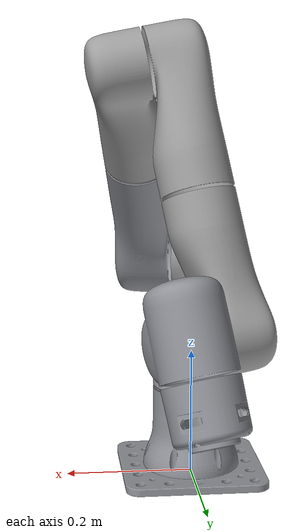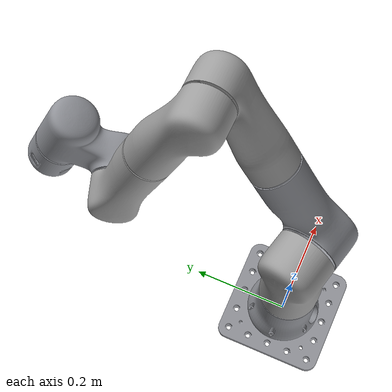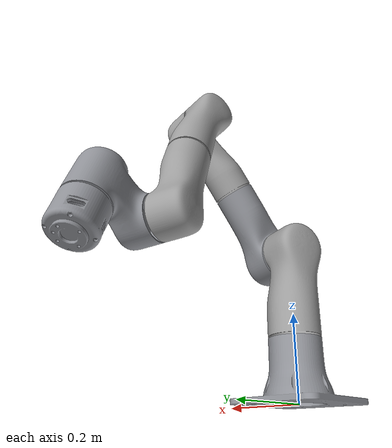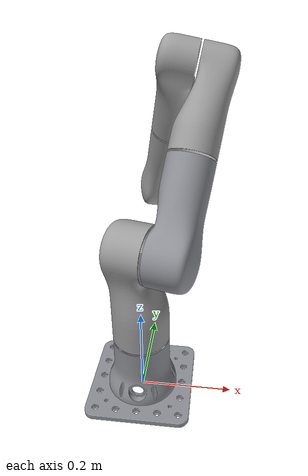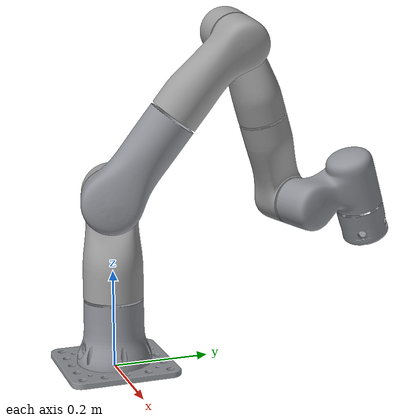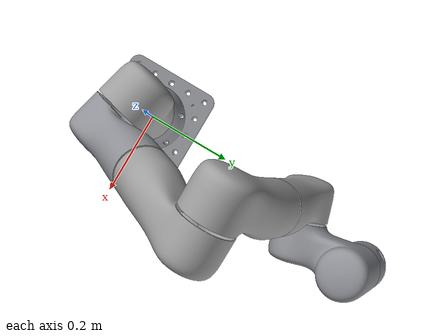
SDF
<sdf version="1.6">
<model name="onshape">
<link name="link1">
<frame name="link1_frame"><pose>0 0 0 0 -0 0</pose></frame>
<visual name="link1_visual">
<pose>0 0 0 0 -0 0</pose>
<geometry>
<mesh><uri>file://link1_visual.stl</uri></mesh>
</geometry>
<material><ambient>0.568627 0.576471 0.6 1</ambient><diffuse>0.568627 0.576471 0.6 1</diffuse><specular>0.1 0.1 0.1 1</specular><emissive>0 0 0 0</emissive></material>
</visual>
<visual name="link1_visual">
<pose>0 0 0 0 -0 0</pose>
<geometry>
<mesh><uri>file://link1_collision.stl</uri></mesh>
</geometry>
<material><ambient>0.568627 0.576471 0.6 1</ambient><diffuse>0.568627 0.576471 0.6 1</diffuse><specular>0.1 0.1 0.1 1</specular><emissive>0 0 0 0</emissive></material>
</visual>
<inertial>
<pose frame="link1_frame">-1.04016e-06 0.000831416 0.0241106 0 0 0</pose>
<mass>2.05413</mass>
<inertia><ixx>0.0168008</ixx><ixy>1.4816e-07</ixy><ixz>-1.86506e-05</ixz><iyy>0.00969422</iyy><iyz>-4.94419e-05</iyz><izz>0.00884774</izz></inertia>
</inertial>
</link>

<link name="link2">
<frame name="link2_frame"><pose>0 0 0 0 -0 0</pose></frame>
<visual name="link2_visual">
<pose>0 0 0 0 -0 0</pose>
<geometry>
<mesh><uri>file://link2_visual.stl</uri></mesh>
</geometry>
<material><ambient>0.627451 0.627451 0.627451 1</ambient><diffuse>0.627451 0.627451 0.627451 1</diffuse><specular>0.1 0.1 0.1 1</specular><emissive>0 0 0 0</emissive></material>
</visual>
<visual name="link2_visual">
<pose>0 0 0 0 -0 0</pose>
<geometry>
<mesh><uri>file://link2_collision.stl</uri></mesh>
</geometry>
<material><ambient>0.627451 0.627451 0.627451 1</ambient><diffuse>0.627451 0.627451 0.627451 1</diffuse><specular>0.1 0.1 0.1 1</specular><emissive>0 0 0 0</emissive></material>
</visual>
<inertial>
<pose frame="link2_frame">-0.0272388 0.00703816 0.306898 0 0 0</pose>
<mass>1.97662</mass>
<inertia><ixx>0.0107799</ixx><ixy>-4.21959e-08</ixy><ixz>0.000129304</ixz><iyy>0.0099239</iyy><iyz>3.05654e-08</iyz><izz>0.00372807</izz></inertia>
</inertial>
</link>

<link name="link3">
<frame name="link3_frame"><pose>0 0 0 0 -0 0</pose></frame>
<visual name="link3_visual">
<pose>0 0 0 0 -0 0</pose>
<geometry>
<mesh><uri>file://link3_visual.stl</uri></mesh>
</geometry>
<material><ambient>0.568627 0.576471 0.6 1</ambient><diffuse>0.568627 0.576471 0.6 1</diffuse><specular>0.1 0.1 0.1 1</specular><emissive>0 0 0 0</emissive></material>
</visual>
<visual name="link3_visual">
<pose>0 0 0 0 -0 0</pose>
<geometry>
<mesh><uri>file://link3_collision.stl</uri></mesh>
</geometry>
<material><ambient>0.568627 0.576471 0.6 1</ambient><diffuse>0.568627 0.576471 0.6 1</diffuse><specular>0.1 0.1 0.1 1</specular><emissive>0 0 0 0</emissive></material>
</visual>
<inertial>
<pose frame="link3_frame">0.0896831 0.00413665 0.392728 0 0 0</pose>
<mass>1.77965</mass>
<inertia><ixx>0.00843729</ixx><ixy>-0.000175012</ixy><ixz>0.000237979</ixz><iyy>0.0059305</iyy><iyz>0.00229693</iyz><izz>0.00449631</izz></inertia>
</inertial>
</link>

<link name="link4-5">
<frame name="link4-5_frame"><pose>0 0 0 0 -0 0</pose></frame>
<visual name="link4-5_visual">
<pose>0 0 0 0 -0 0</pose>
<geometry>
<mesh><uri>file://link4-5_visual.stl</uri></mesh>
</geometry>
<material><ambient>0.627451 0.627451 0.627451 1</ambient><diffuse>0.627451 0.627451 0.627451 1</diffuse><specular>0.1 0.1 0.1 1</specular><emissive>0 0 0 0</emissive></material>
</visual>
<visual name="link4-5_visual">
<pose>0 0 0 0 -0 0</pose>
<geometry>
<mesh><uri>file://link4-5_collision.stl</uri></mesh>
</geometry>
<material><ambient>0.627451 0.627451 0.627451 1</ambient><diffuse>0.627451 0.627451 0.627451 1</diffuse><specular>0.1 0.1 0.1 1</specular><emissive>0 0 0 0</emissive></material>
</visual>
<inertial>
<pose frame="link4-5_frame">0.136097 0.193881 0.628879 0 0 0</pose>
<mass>1.28901</mass>
<inertia><ixx>0.0051274</ixx><ixy>-0.000352807</ixy><ixz>0.000797207</ixz><iyy>0.00432251</iyy><iyz>0.00133772</iyz><izz>0.00261717</izz></inertia>
</inertial>
</link>

<link name="link4-5_2">
<frame name="link4-5_2_frame"><pose>0 0 0 0 -0 0</pose></frame>
<visual name="link4-5_2_visual">
<pose>0 0 0 0 -0 0</pose>
<geometry>
<mesh><uri>file://link4-5_2_visual.stl</uri></mesh>
</geometry>
<material><ambient>0.627451 0.627451 0.627451 1</ambient><diffuse>0.627451 0.627451 0.627451 1</diffuse><specular>0.1 0.1 0.1 1</specular><emissive>0 0 0 0</emissive></material>
</visual>
<visual name="link4-5_2_visual">
<pose>0 0 0 0 -0 0</pose>
<geometry>
<mesh><uri>file://link4-5_2_collision.stl</uri></mesh>
</geometry>
<material><ambient>0.627451 0.627451 0.627451 1</ambient><diffuse>0.627451 0.627451 0.627451 1</diffuse><specular>0.1 0.1 0.1 1</specular><emissive>0 0 0 0</emissive></material>
</visual>
<inertial>
<pose frame="link4-5_2_frame">0.0351251 0.250522 0.639921 0 0 0</pose>
<mass>1.28901</mass>
<inertia><ixx>0.0051274</ixx><ixy>-0.000450714</ixy><ixz>0.000746236</ixz><iyy>0.00443511</iyy><iyz>0.00125888</iyz><izz>0.00250457</izz></inertia>
</inertial>
</link>

<link name="link6">
<frame name="link6_frame"><pose>0 0 0 0 -0 0</pose></frame>
<visual name="link6_visual">
<pose>0 0 0 0 -0 0</pose>
<geometry>
<mesh><uri>file://link6_visual.stl</uri></mesh>
</geometry>
<material><ambient>0.627451 0.627451 0.627451 1</ambient><diffuse>0.627451 0.627451 0.627451 1</diffuse><specular>0.1 0.1 0.1 1</specular><emissive>0 0 0 0</emissive></material>
</visual>
<visual name="link6_visual">
<pose>0 0 0 0 -0 0</pose>
<geometry>
<mesh><uri>file://link6_collision.stl</uri></mesh>
</geometry>
<material><ambient>0.627451 0.627451 0.627451 1</ambient><diffuse>0.627451 0.627451 0.627451 1</diffuse><specular>0.1 0.1 0.1 1</specular><emissive>0 0 0 0</emissive></material>
</visual>
<inertial>
<pose frame="link6_frame">-0.0143289 0.35461 0.368173 0 0 0</pose>
<mass>1.26054</mass>
<inertia><ixx>0.00433505</ixx><ixy>0.000560415</ixy><ixz>-0.00147462</ixz><iyy>0.0046681</iyy><iyz>0.000761095</iyz><izz>0.00282748</izz></inertia>
</inertial>
</link>

<link name="link7">
<frame name="link7_frame"><pose>0 0 0 0 -0 0</pose></frame>
<visual name="link7_visual">
<pose>0 0 0 0 -0 0</pose>
<geometry>
<mesh><uri>file://link7_visual.stl</uri></mesh>
</geometry>
<material><ambient>0.568627 0.576471 0.6 1</ambient><diffuse>0.568627 0.576471 0.6 1</diffuse><specular>0.1 0.1 0.1 1</specular><emissive>0 0 0 0</emissive></material>
</visual>
<visual name="link7_visual">
<pose>0 0 0 0 -0 0</pose>
<geometry>
<mesh><uri>file://link7_collision.stl</uri></mesh>
</geometry>
<material><ambient>0.568627 0.576471 0.6 1</ambient><diffuse>0.568627 0.576471 0.6 1</diffuse><specular>0.1 0.1 0.1 1</specular><emissive>0 0 0 0</emissive></material>
</visual>
<inertial>
<pose frame="link7_frame">0.0723503 0.457242 0.36064 0 0 0</pose>
<mass>2.26819</mass>
<inertia><ixx>0.0083623</ixx><ixy>0.000930983</ixy><ixz>-0.000189628</ixz><iyy>0.00289005</iyy><iyz>0.000147094</iyz><izz>0.00853102</izz></inertia>
</inertial>
</link>

<link name="l7.step">
<frame name="l7.step_frame"><pose>0 0 0 0 -0 0</pose></frame>
<visual name="l7.step_visual">
<pose>0 0 0 0 -0 0</pose>
<geometry>
<mesh><uri>file://l7.step_visual.stl</uri></mesh>
</geometry>
<material><ambient>0.569543 0.577347 0.60076 1</ambient><diffuse>0.569543 0.577347 0.60076 1</diffuse><specular>0.1 0.1 0.1 1</specular><emissive>0 0 0 0</emissive></material>
</visual>
<visual name="l7.step_visual">
<pose>0 0 0 0 -0 0</pose>
<geometry>
<mesh><uri>file://l7.step_collision.stl</uri></mesh>
</geometry>
<material><ambient>0.569543 0.577347 0.60076 1</ambient><diffuse>0.569543 0.577347 0.60076 1</diffuse><specular>0.1 0.1 0.1 1</specular><emissive>0 0 0 0</emissive></material>
</visual>
<inertial>
<pose frame="l7.step_frame">0.047819 0.542135 0.260822 0 0 0</pose>
<mass>0.310614</mass>
<inertia><ixx>0.000500799</ixx><ixy>4.73338e-06</ixy><ixz>4.36326e-06</ixz><iyy>0.000425453</iyy><iyz>-2.48455e-05</iyz><izz>0.000448493</izz></inertia>
</inertial>
</link>

<joint name="j7" type="revolute">
<pose>0.0567958 0.524265 0.309285 -0.210269 -0.334044 2.61394</pose>
<parent>link7</parent>
<child>l7.step</child>
<axis>
<xyz>0 0 1</xyz>
<limit><effort>1</effort><velocity>20</velocity><lower>-2.96706</lower><upper>2.96706</upper></limit>
</axis>
</joint>

<joint name="j6" type="revolute">
<pose>0.0284395 0.386313 0.323059 1.502 0.386836 -1.28536</pose>
<parent>link6</parent>
<child>link7</child>
<axis>
<xyz>0 0 1</xyz>
<limit><effort>1</effort><velocity>20</velocity><lower>-1.39626</lower><upper>4.53786</upper></limit>
</axis>
</joint>

<joint name="j5" type="revolute">
<pose>0.0326093 0.3122 0.500514 -0.387664 -0.0637077 -2.83016</pose>
<parent>link4-5_2</parent>
<child>link6</child>
<axis>
<xyz>0 0 1</xyz>
<limit><effort>1</effort><velocity>20</velocity><lower>-2.96706</lower><upper>2.96706</upper></limit>
</axis>
</joint>

<joint name="j4" type="revolute">
<pose>0.08953 0.226829 0.669398 -2.06633 -1.17819 -1.1047</pose>
<parent>link4-5</parent>
<child>link4-5_2</child>
<axis>
<xyz>0 0 1</xyz>
<limit><effort>1</effort><velocity>20</velocity><lower>-1.8675</lower><upper>2.68781</upper></limit>
</axis>
</joint>

<joint name="j3" type="revolute">
<pose>0.0931645 0.101509 0.522151 2.53095 0.182944 0.00293578</pose>
<parent>link3</parent>
<child>link4-5</child>
<axis>
<xyz>0 0 1</xyz>
<limit><effort>1</effort><velocity>20</velocity><lower>-2.96706</lower><upper>2.96706</upper></limit>
</axis>
</joint>

<joint name="j2" type="revolute">
<pose>0.0290553 -0.00741863 0.357002 1.5708 0.936704 -1.82217</pose>
<parent>link2</parent>
<child>link3</child>
<axis>
<xyz>0 0 1</xyz>
<limit><effort>1</effort><velocity>20</velocity><lower>-2.26893</lower><upper>2.26893</upper></limit>
</axis>
</joint>

<joint name="j1" type="revolute">
<pose>-1.77987e-06 4.36677e-05 0.147 3.14159 5.63767e-17 2.89022</pose>
<parent>link1</parent>
<child>link2</child>
<axis>
<xyz>0 0 1</xyz>
<limit><effort>1</effort><velocity>20</velocity><lower>-2.79253</lower><upper>2.79253</upper></limit>
</axis>
</joint>

</model>
</sdf>
